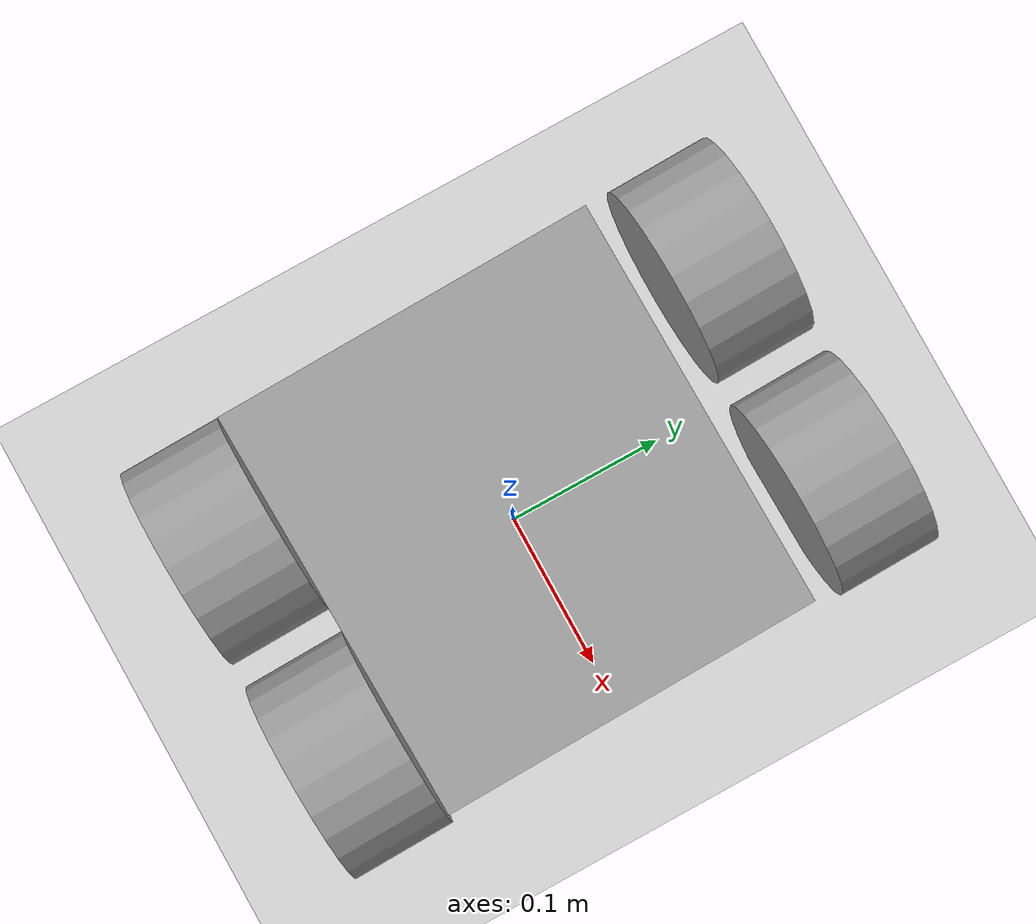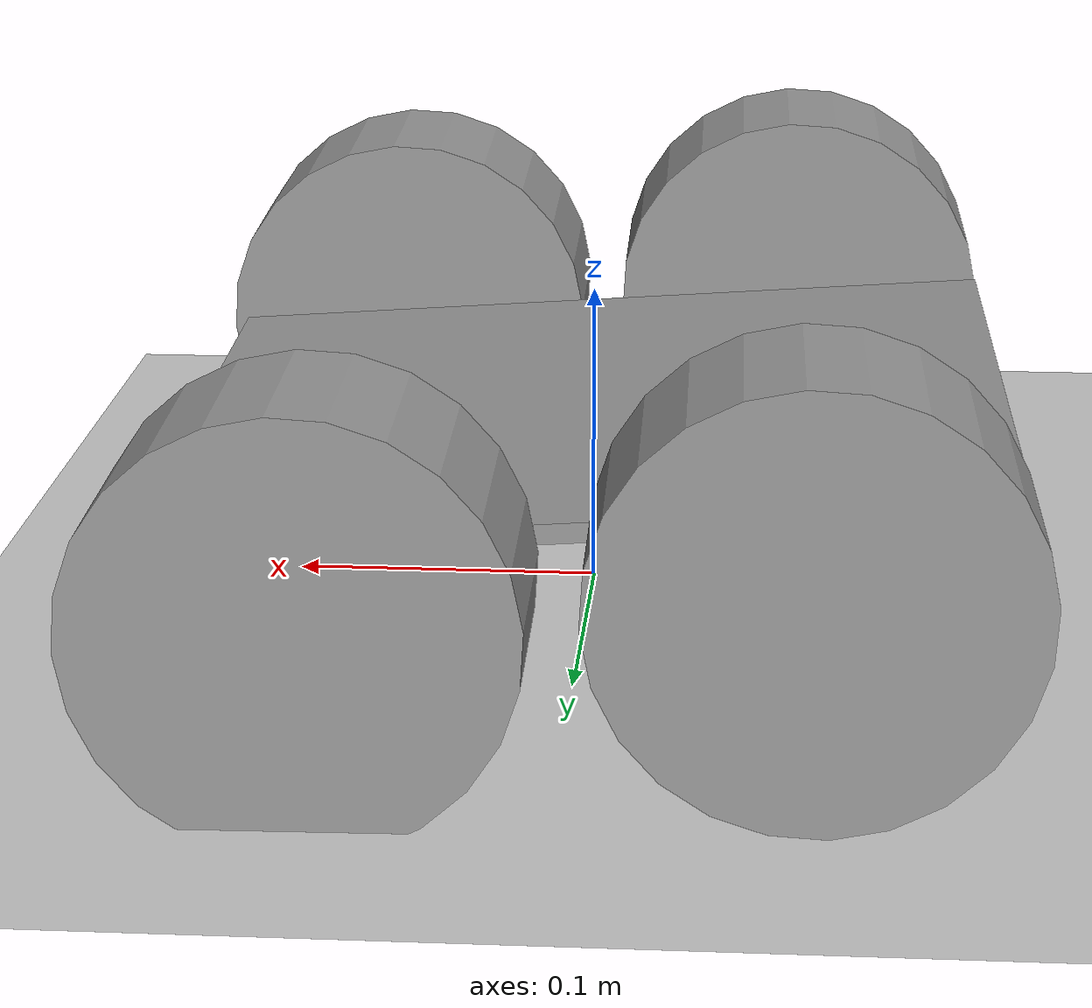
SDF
<sdf version="1.6">
 <world name="avi_world">
  <plugin name="hello" filename="libhello.so"/>
  <light name="sun" type="directional">
   <pose>0 0 10 0 -0 0</pose>
   <diffuse>0.8 0.8 0.8 1</diffuse>
   <specular>0.2 0.2 0.2 1</specular>
   <attenuation>
    <range>1000</range>
    <constant>0.9</constant>
    <linear>0.01</linear>
    <quadratic>0.001</quadratic>
   </attenuation>
   <direction>-0.5 0.1 -0.9</direction>
  </light>
  <model name="ground_plane">
   <static>1</static>
   <link name="link">
    <collision name="collision">
     <geometry><plane><normal>0 0 1</normal><size>100 100</size></plane></geometry>
     <surface>
      <contact><collide_bitmask>65535</collide_bitmask></contact>
      <friction><ode><mu>100</mu><mu2>50</mu2></ode></friction>
     </surface>
    </collision>
    <visual name="visual">
     <cast_shadows>0</cast_shadows>
     <geometry><plane><normal>0 0 1</normal><size>100 100</size></plane></geometry>
     <material>
      <script><uri>file://media/materials/scripts/gazebo.material</uri><name>Gazebo/Grey</name></script>
     </material>
    </visual>
   </link>
  </model>
  <gravity>0 0 -9.8</gravity>
  <magnetic_field>6e-06 2.3e-05 -4.2e-05</magnetic_field>
  <atmosphere type="adiabatic"/>
  <physics name="default_physics" default="0" type="ode">
   <max_step_size>0.001</max_step_size>
   <real_time_factor>1</real_time_factor>
   <real_time_update_rate>1000</real_time_update_rate>
  </physics>
  <scene><ambient>0.4 0.4 0.4 1</ambient><background>0.7 0.7 0.7 1</background><shadows>1</shadows></scene>
  <audio><device>default</device></audio>
  <spherical_coordinates>
   <surface_model>EARTH_WGS84</surface_model>
   <latitude_deg>0</latitude_deg>
   <longitude_deg>0</longitude_deg>
   <elevation>0</elevation>
   <heading_deg>0</heading_deg>
  </spherical_coordinates>
  <model name="fwd_robot">
   <link name="link_4_clone">
    <inertial>
     <mass>1</mass>
     <inertia><ixx>0.145833</ixx><ixy>0</ixy><ixz>0</ixz><iyy>0.145833</iyy><iyz>0</iyz><izz>0.125</izz></inertia>
    </inertial>
    <pose>-0.072 -0.1635 -0 1.5708 -0 0</pose>
    <visual name="visual">
     <geometry><cylinder><radius>0.065</radius><length>0.065</length></cylinder></geometry>
     <material>
      <lighting>1</lighting>
      <script><uri>file://media/materials/scripts/gazebo.material</uri><name>Gazebo/Grey</name></script>
      <shader type="vertex"><normal_map>__default__</normal_map></shader>
      <ambient>0.3 0.3 0.3 1</ambient>
      <diffuse>0.7 0.7 0.7 1</diffuse>
      <specular>0.01 0.01 0.01 1</specular>
      <emissive>0 0 0 1</emissive>
     </material>
    </visual>
    <collision name="collision">
     <geometry><cylinder><radius>0.065</radius><length>0.065</length></cylinder></geometry>
     <surface>
      <friction>
       <ode><mu>1</mu><mu2>1</mu2><fdir1>0 0 0</fdir1><slip1>0</slip1><slip2>0</slip2></ode>
       <torsional>
        <coefficient>1</coefficient>
        <patch_radius>0</patch_radius>
        <surface_radius>0</surface_radius>
        <use_patch_radius>1</use_patch_radius>
        <ode><slip>0</slip></ode>
       </torsional>
      </friction>
      <bounce><restitution_coefficient>0</restitution_coefficient><threshold>1e+06</threshold></bounce>
      <contact>
       <collide_without_contact>0</collide_without_contact>
       <collide_without_contact_bitmask>1</collide_without_contact_bitmask>
       <collide_bitmask>1</collide_bitmask>
       <ode>
        <soft_cfm>0</soft_cfm>
        <soft_erp>0.2</soft_erp>
        <kp>1e+13</kp>
        <kd>1</kd>
        <max_vel>0.01</max_vel>
        <min_depth>0</min_depth>
       </ode>
       <bullet>
        <split_impulse>1</split_impulse>
        <split_impulse_penetration_threshold>-0.01</split_impulse_penetration_threshold>
        <soft_cfm>0</soft_cfm>
        <soft_erp>0.2</soft_erp>
        <kp>1e+13</kp>
        <kd>1</kd>
       </bullet>
      </contact>
     </surface>
    </collision>
   </link>
   <link name="link_4_clone_0">
    <inertial>
     <mass>1</mass>
     <inertia><ixx>0.145833</ixx><ixy>0</ixy><ixz>0</ixz><iyy>0.145833</iyy><iyz>0</iyz><izz>0.125</izz></inertia>
    </inertial>
    <pose>0.073 -0.1635 -0 1.5708 -0 0</pose>
    <visual name="visual">
     <geometry><cylinder><radius>0.065</radius><length>0.065</length></cylinder></geometry>
     <material>
      <lighting>1</lighting>
      <script><uri>file://media/materials/scripts/gazebo.material</uri><name>Gazebo/Grey</name></script>
      <shader type="vertex"><normal_map>__default__</normal_map></shader>
      <ambient>0.3 0.3 0.3 1</ambient>
      <diffuse>0.7 0.7 0.7 1</diffuse>
      <specular>0.01 0.01 0.01 1</specular>
      <emissive>0 0 0 1</emissive>
     </material>
    </visual>
    <collision name="collision">
     <geometry><cylinder><radius>0.065</radius><length>0.065</length></cylinder></geometry>
     <surface>
      <friction>
       <ode><mu>1</mu><mu2>1</mu2><fdir1>0 0 0</fdir1><slip1>0</slip1><slip2>0</slip2></ode>
       <torsional>
        <coefficient>1</coefficient>
        <patch_radius>0</patch_radius>
        <surface_radius>0</surface_radius>
        <use_patch_radius>1</use_patch_radius>
        <ode><slip>0</slip></ode>
       </torsional>
      </friction>
      <bounce><restitution_coefficient>0</restitution_coefficient><threshold>1e+06</threshold></bounce>
      <contact>
       <collide_without_contact>0</collide_without_contact>
       <collide_without_contact_bitmask>1</collide_without_contact_bitmask>
       <collide_bitmask>1</collide_bitmask>
       <ode>
        <soft_cfm>0</soft_cfm>
        <soft_erp>0.2</soft_erp>
        <kp>1e+13</kp>
        <kd>1</kd>
        <max_vel>0.01</max_vel>
        <min_depth>0</min_depth>
       </ode>
       <bullet>
        <split_impulse>1</split_impulse>
        <split_impulse_penetration_threshold>-0.01</split_impulse_penetration_threshold>
        <soft_cfm>0</soft_cfm>
        <soft_erp>0.2</soft_erp>
        <kp>1e+13</kp>
        <kd>1</kd>
       </bullet>
      </contact>
     </surface>
    </collision>
   </link>
   <link name="link_4_clone_0_clone">
    <inertial>
     <mass>1</mass>
     <inertia><ixx>0.145833</ixx><ixy>0</ixy><ixz>0</ixz><iyy>0.145833</iyy><iyz>0</iyz><izz>0.125</izz></inertia>
     <pose>0 0 0 -0.01 0 0</pose>
    </inertial>
    <pose>0.073 0.1665 -0 -1.5708 0 0</pose>
    <visual name="visual">
     <geometry><cylinder><radius>0.065</radius><length>0.065</length></cylinder></geometry>
     <material>
      <lighting>1</lighting>
      <script><uri>file://media/materials/scripts/gazebo.material</uri><name>Gazebo/Grey</name></script>
      <shader type="vertex"><normal_map>__default__</normal_map></shader>
      <ambient>0.3 0.3 0.3 1</ambient>
      <diffuse>0.7 0.7 0.7 1</diffuse>
      <specular>0.01 0.01 0.01 1</specular>
      <emissive>0 0 0 1</emissive>
     </material>
    </visual>
    <collision name="collision">
     <geometry><cylinder><radius>0.065</radius><length>0.065</length></cylinder></geometry>
     <surface>
      <friction>
       <ode><mu>1</mu><mu2>1</mu2><fdir1>0 0 0</fdir1><slip1>0</slip1><slip2>0</slip2></ode>
       <torsional>
        <coefficient>1</coefficient>
        <patch_radius>0</patch_radius>
        <surface_radius>0</surface_radius>
        <use_patch_radius>1</use_patch_radius>
        <ode><slip>0</slip></ode>
       </torsional>
      </friction>
      <bounce><restitution_coefficient>0</restitution_coefficient><threshold>1e+06</threshold></bounce>
      <contact>
       <collide_without_contact>0</collide_without_contact>
       <collide_without_contact_bitmask>1</collide_without_contact_bitmask>
       <collide_bitmask>1</collide_bitmask>
       <ode>
        <soft_cfm>0</soft_cfm>
        <soft_erp>0.2</soft_erp>
        <kp>1e+13</kp>
        <kd>1</kd>
        <max_vel>0.01</max_vel>
        <min_depth>0</min_depth>
       </ode>
       <bullet>
        <split_impulse>1</split_impulse>
        <split_impulse_penetration_threshold>-0.01</split_impulse_penetration_threshold>
        <soft_cfm>0</soft_cfm>
        <soft_erp>0.2</soft_erp>
        <kp>1e+13</kp>
        <kd>1</kd>
       </bullet>
      </contact>
     </surface>
    </collision>
   </link>
   <link name="link_4_clone_1">
    <inertial>
     <mass>1</mass>
     <inertia><ixx>0.145833</ixx><ixy>0</ixy><ixz>0</ixz><iyy>0.145833</iyy><iyz>0</iyz><izz>0.125</izz></inertia>
    </inertial>
    <pose>-0.072 0.1665 -0 -1.5708 0 0</pose>
    <visual name="visual">
     <geometry><cylinder><radius>0.065</radius><length>0.065</length></cylinder></geometry>
     <material>
      <lighting>1</lighting>
      <script><uri>file://media/materials/scripts/gazebo.material</uri><name>Gazebo/Grey</name></script>
      <shader type="vertex"><normal_map>__default__</normal_map></shader>
      <ambient>0.3 0.3 0.3 1</ambient>
      <diffuse>0.7 0.7 0.7 1</diffuse>
      <specular>0.01 0.01 0.01 1</specular>
      <emissive>0 0 0 1</emissive>
     </material>
    </visual>
    <collision name="collision">
     <geometry><cylinder><radius>0.065</radius><length>0.065</length></cylinder></geometry>
     <surface>
      <friction>
       <ode><mu>1</mu><mu2>1</mu2><fdir1>0 0 0</fdir1><slip1>0</slip1><slip2>0</slip2></ode>
       <torsional>
        <coefficient>1</coefficient>
        <patch_radius>0</patch_radius>
        <surface_radius>0</surface_radius>
        <use_patch_radius>1</use_patch_radius>
        <ode><slip>0</slip></ode>
       </torsional>
      </friction>
      <bounce><restitution_coefficient>0</restitution_coefficient><threshold>1e+06</threshold></bounce>
      <contact>
       <collide_without_contact>0</collide_without_contact>
       <collide_without_contact_bitmask>1</collide_without_contact_bitmask>
       <collide_bitmask>1</collide_bitmask>
       <ode>
        <soft_cfm>0</soft_cfm>
        <soft_erp>0.2</soft_erp>
        <kp>1e+13</kp>
        <kd>1</kd>
        <max_vel>0.01</max_vel>
        <min_depth>0</min_depth>
       </ode>
       <bullet>
        <split_impulse>1</split_impulse>
        <split_impulse_penetration_threshold>-0.01</split_impulse_penetration_threshold>
        <soft_cfm>0</soft_cfm>
        <soft_erp>0.2</soft_erp>
        <kp>1e+13</kp>
        <kd>1</kd>
       </bullet>
      </contact>
     </surface>
    </collision>
   </link>
   <link name="link_5">
    <inertial>
     <mass>1</mass>
     <inertia>
      <ixx>0.166667</ixx>
      <ixy>0</ixy>
      <ixz>0</ixz>
      <iyy>0.166667</iyy>
      <iyz>0</iyz>
      <izz>0.166667</izz>
     </inertia>
    </inertial>
    <pose>-0.002 -0.006 -0 0 -0 0</pose>
    <visual name="visual">
     <geometry><box><size>0.27 0.25 0.00635</size></box></geometry>
     <material>
      <lighting>1</lighting>
      <script><uri>file://media/materials/scripts/gazebo.material</uri><name>Gazebo/Grey</name></script>
      <shader type="vertex"><normal_map>__default__</normal_map></shader>
      <ambient>0.3 0.3 0.3 1</ambient>
      <diffuse>0.7 0.7 0.7 1</diffuse>
      <specular>0.01 0.01 0.01 1</specular>
      <emissive>0 0 0 1</emissive>
     </material>
    </visual>
    <collision name="collision">
     <geometry><box><size>0.27 0.25 0.00635</size></box></geometry>
     <surface>
      <friction>
       <ode><mu>1</mu><mu2>1</mu2><fdir1>0 0 0</fdir1><slip1>0</slip1><slip2>0</slip2></ode>
       <torsional>
        <coefficient>1</coefficient>
        <patch_radius>0</patch_radius>
        <surface_radius>0</surface_radius>
        <use_patch_radius>1</use_patch_radius>
        <ode><slip>0</slip></ode>
       </torsional>
      </friction>
      <bounce><restitution_coefficient>0</restitution_coefficient><threshold>1e+06</threshold></bounce>
      <contact>
       <collide_without_contact>0</collide_without_contact>
       <collide_without_contact_bitmask>1</collide_without_contact_bitmask>
       <collide_bitmask>1</collide_bitmask>
       <ode>
        <soft_cfm>0</soft_cfm>
        <soft_erp>0.2</soft_erp>
        <kp>1e+13</kp>
        <kd>1</kd>
        <max_vel>0.01</max_vel>
        <min_depth>0</min_depth>
       </ode>
       <bullet>
        <split_impulse>1</split_impulse>
        <split_impulse_penetration_threshold>-0.01</split_impulse_penetration_threshold>
        <soft_cfm>0</soft_cfm>
        <soft_erp>0.2</soft_erp>
        <kp>1e+13</kp>
        <kd>1</kd>
       </bullet>
      </contact>
     </surface>
    </collision>
   </link>
   <joint name="link_5_JOINT_11" type="revolute">
    <parent>link_5</parent>
    <child>link_4_clone_0_clone</child>
    <axis>
     <xyz>0 0 1</xyz>
     <use_parent_model_frame>0</use_parent_model_frame>
     <limit>
      <lower>-1.79769e+308</lower>
      <upper>1.79769e+308</upper>
      <effort>-1</effort>
      <velocity>-1</velocity>
     </limit>
     <dynamics>
      <spring_reference>0</spring_reference>
      <spring_stiffness>0</spring_stiffness>
      <damping>0</damping>
     </dynamics>
    </axis>
    <physics>
     <ode><limit><cfm>0</cfm><erp>0.2</erp></limit><suspension><cfm>0</cfm><erp>0.2</erp></suspension></ode>
    </physics>
   </joint>
   <joint name="link_5_JOINT_12" type="revolute">
    <parent>link_5</parent>
    <child>link_4_clone_1</child>
    <axis>
     <xyz>0 0 1</xyz>
     <use_parent_model_frame>0</use_parent_model_frame>
     <limit>
      <lower>-1.79769e+308</lower>
      <upper>1.79769e+308</upper>
      <effort>-1</effort>
      <velocity>-1</velocity>
     </limit>
     <dynamics>
      <spring_reference>0</spring_reference>
      <spring_stiffness>0</spring_stiffness>
      <damping>0</damping>
     </dynamics>
    </axis>
    <physics>
     <ode><limit><cfm>0</cfm><erp>0.2</erp></limit><suspension><cfm>0</cfm><erp>0.2</erp></suspension></ode>
    </physics>
   </joint>
   <joint name="link_5_JOINT_5" type="revolute">
    <parent>link_5</parent>
    <child>link_4_clone_0</child>
    <axis>
     <xyz>0 0 1</xyz>
     <use_parent_model_frame>0</use_parent_model_frame>
     <limit>
      <lower>-1.79769e+308</lower>
      <upper>1.79769e+308</upper>
      <effort>-1</effort>
      <velocity>-1</velocity>
     </limit>
     <dynamics>
      <spring_reference>0</spring_reference>
      <spring_stiffness>0</spring_stiffness>
      <damping>0</damping>
     </dynamics>
    </axis>
    <physics>
     <ode><limit><cfm>0</cfm><erp>0.2</erp></limit><suspension><cfm>0</cfm><erp>0.2</erp></suspension></ode>
    </physics>
   </joint>
   <joint name="link_5_JOINT_6" type="revolute">
    <parent>link_5</parent>
    <child>link_4_clone</child>
    <axis>
     <xyz>0 0 1</xyz>
     <use_parent_model_frame>0</use_parent_model_frame>
     <limit>
      <lower>-1.79769e+308</lower>
      <upper>1.79769e+308</upper>
      <effort>-1</effort>
      <velocity>-1</velocity>
     </limit>
     <dynamics>
      <spring_reference>0</spring_reference>
      <spring_stiffness>0</spring_stiffness>
      <damping>0</damping>
     </dynamics>
    </axis>
    <physics>
     <ode><limit><cfm>0</cfm><erp>0.2</erp></limit><suspension><cfm>0</cfm><erp>0.2</erp></suspension></ode>
    </physics>
   </joint>
   <static>0</static>
   <pose>0.001709 0.008915 0.060174 1e-05 0.067044 0.022486</pose>
  </model>
 </world>
</sdf>
